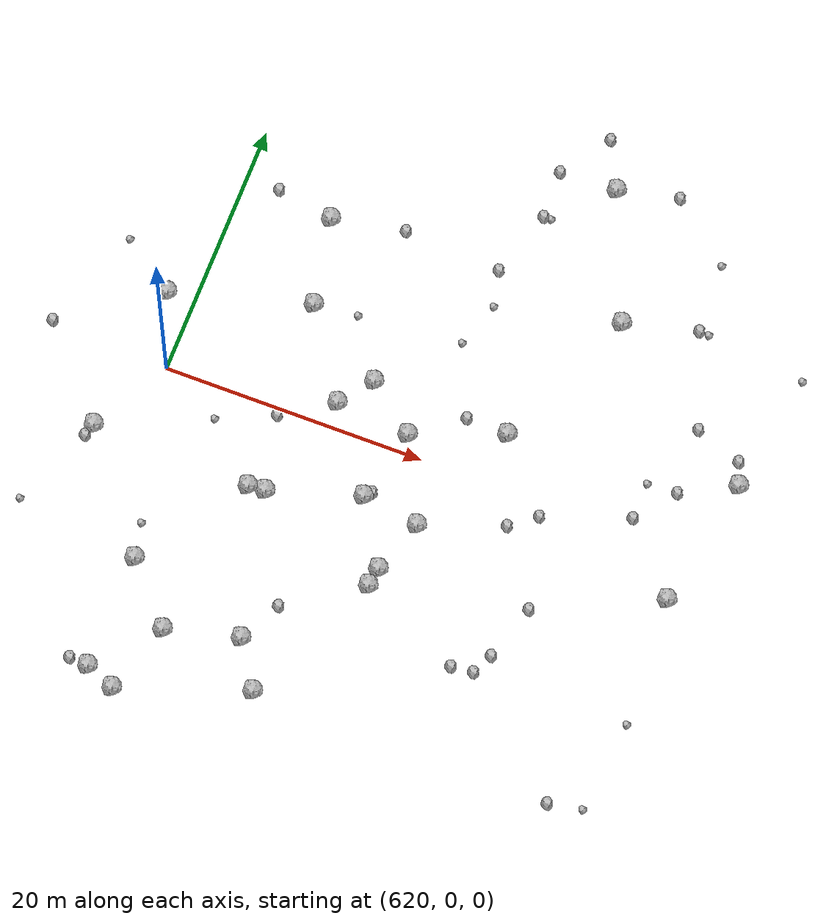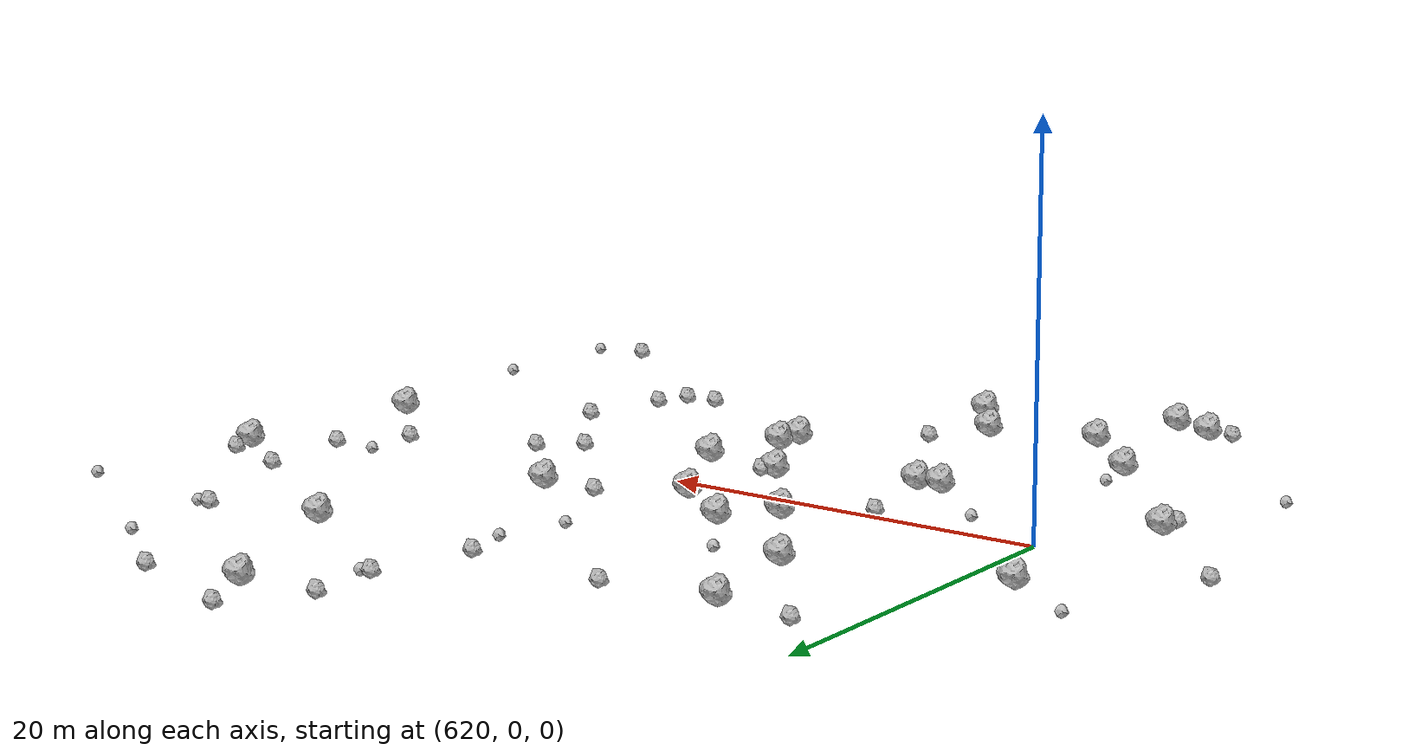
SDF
<sdf version="1.6">
 <world name="default">
  <include><uri>model://sun</uri></include>
  <model name="rock1_16_3">
   <include><uri>model://rock1</uri><pose>627.0260802669364 15.280998766811145 0.5 0 0 0</pose></include>
  </model>
  <model name="rock1_16_4">
   <include><uri>model://rock1</uri><pose>662.3733468984516 6.35729685346012 0.5 0 0 0</pose></include>
  </model>
  <model name="rock1_16_5">
   <include><uri>model://rock1</uri><pose>645.2186205615582 4.070316579465285 0.5 0 0 0</pose></include>
  </model>
  <model name="rock1_16_6">
   <include><uri>model://rock1</uri><pose>627.2645078390868 -18.86324153900548 0.5 0 0 0</pose></include>
  </model>
  <model name="rock1_16_7">
   <include><uri>model://rock1</uri><pose>625.4941531287235 -24.303367677286918 0.5 0 0 0</pose></include>
  </model>
  <model name="rock1_16_8">
   <include><uri>model://rock1</uri><pose>630.2947609237827 -6.337194175225054 0.5 0 0 0</pose></include>
  </model>
  <model name="rock1_16_9">
   <include><uri>model://rock1</uri><pose>623.2445659460645 -23.377354130462557 0.5 0 0 0</pose></include>
  </model>
  <model name="rock1_16_10">
   <include><uri>model://rock1</uri><pose>628.3127507885478 8.487707387196885 0.5 0 0 0</pose></include>
  </model>
  <model name="rock1_16_11">
   <include><uri>model://rock1</uri><pose>637.1439655581682 -4.15417233056165 0.5 0 0 0</pose></include>
  </model>
  <model name="rock1_16_12">
   <include><uri>model://rock1</uri><pose>639.943411581947 -10.434954726240143 0.5 0 0 0</pose></include>
  </model>
  <model name="rock1_16_13">
   <include><uri>model://rock1</uri><pose>628.988083920729 -6.447606170345548 0.5 0 0 0</pose></include>
  </model>
  <model name="rock1_16_14">
   <include><uri>model://rock1</uri><pose>635.0680969828536 -20.901773229123044 0.5 0 0 0</pose></include>
  </model>
  <model name="rock1_16_15">
   <include><uri>model://rock1</uri><pose>641.5611596472628 -4.858194111599165 0.5 0 0 0</pose></include>
  </model>
  <model name="rock1_16_16">
   <include><uri>model://rock1</uri><pose>640.1637841899112 -8.99173091509429 0.5 0 0 0</pose></include>
  </model>
  <model name="rock1_16_17">
   <include><uri>model://rock1</uri><pose>638.419811630801 1.4512036176316698 0.5 0 0 0</pose></include>
  </model>
  <model name="rock1_16_18">
   <include><uri>model://rock1</uri><pose>616.7204031695405 -6.060468842366163 0.5 0 0 0</pose></include>
  </model>
  <model name="rock1_16_19">
   <include><uri>model://rock1</uri><pose>617.8705922618323 5.54074994887074 0.5 0 0 0</pose></include>
  </model>
  <model name="rock1_16_20">
   <include><uri>model://rock1</uri><pose>623.3445728999529 -14.545218617549367 0.5 0 0 0</pose></include>
  </model>
  <model name="rock1_16_21">
   <include><uri>model://rock1</uri><pose>634.6489202512864 4.44158902262555 0.5 0 0 0</pose></include>
  </model>
  <model name="rock1_16_22">
   <include><uri>model://rock1</uri><pose>650.0036801727806 15.217081147983471 0.5 0 0 0</pose></include>
  </model>
  <model name="rock1_16_23">
   <include><uri>model://rock1</uri><pose>645.9758912926159 24.99025056564846 0.5 0 0 0</pose></include>
  </model>
  <model name="rock1_16_24">
   <include><uri>model://rock1</uri><pose>660.5175484372983 -3.6983985780376862 0.5 0 0 0</pose></include>
  </model>
  <model name="rock1_16_25">
   <include><uri>model://rock1</uri><pose>632.736325920314 1.9283905982598455 0.5 0 0 0</pose></include>
  </model>
  <model name="rock1_16_26">
   <include><uri>model://rock1</uri><pose>632.8033555472169 -17.459316099446312 0.5 0 0 0</pose></include>
  </model>
  <model name="rock2_16_0">
   <include><uri>model://rock2</uri><pose>644.1361963479804 28.62034655683788 0.3 0 0 0</pose></include>
  </model>
  <model name="rock2_16_1">
   <include><uri>model://rock2</uri><pose>655.5347511936309 16.68239905391321 0.3 0 0 0</pose></include>
  </model>
  <model name="rock2_16_2">
   <include><uri>model://rock2</uri><pose>657.7958248744345 -21.21593825334087 0.3 0 0 0</pose></include>
  </model>
  <model name="rock2_16_3">
   <include><uri>model://rock2</uri><pose>641.9899190883831 4.187424578738039 0.3 0 0 0</pose></include>
  </model>
  <model name="rock2_16_4">
   <include><uri>model://rock2</uri><pose>661.7200720919604 8.110629899357441 0.3 0 0 0</pose></include>
  </model>
  <model name="rock2_16_5">
   <include><uri>model://rock2</uri><pose>621.7678614389463 -23.268499008966263 0.3 0 0 0</pose></include>
  </model>
  <model name="rock2_16_6">
   <include><uri>model://rock2</uri><pose>649.6216140793891 -1.051460789360739 0.3 0 0 0</pose></include>
  </model>
  <model name="rock2_16_7">
   <include><uri>model://rock2</uri><pose>622.5925146220067 16.068769558431462 0.3 0 0 0</pose></include>
  </model>
  <model name="rock2_16_8">
   <include><uri>model://rock2</uri><pose>632.5467244900593 16.35084326389736 0.3 0 0 0</pose></include>
  </model>
  <model name="rock2_16_9">
   <include><uri>model://rock2</uri><pose>634.4504778239409 4.304809489522434 0.3 0 0 0</pose></include>
  </model>
  <model name="rock2_16_10">
   <include><uri>model://rock2</uri><pose>656.0149959158547 1.2702628502832383 0.3 0 0 0</pose></include>
  </model>
  <model name="rock2_16_11">
   <include><uri>model://rock2</uri><pose>650.5812234534942 26.05607035547842 0.3 0 0 0</pose></include>
  </model>
  <model name="rock2_16_12">
   <include><uri>model://rock2</uri><pose>640.0649165267338 15.89629129874718 0.3 0 0 0</pose></include>
  </model>
  <model name="rock2_16_13">
   <include><uri>model://rock2</uri><pose>647.6896225287741 -14.060069161050743 0.3 0 0 0</pose></include>
  </model>
  <model name="rock2_16_14">
   <include><uri>model://rock2</uri><pose>658.1217415454238 9.408435500080813 0.3 0 0 0</pose></include>
  </model>
  <model name="rock2_16_15">
   <include><uri>model://rock2</uri><pose>628.9532899322073 -0.5543762079966683 0.3 0 0 0</pose></include>
  </model>
  <model name="rock2_16_16">
   <include><uri>model://rock2</uri><pose>649.3717857387346 -13.890506749077215 0.3 0 0 0</pose></include>
  </model>
  <model name="rock2_16_17">
   <include><uri>model://rock2</uri><pose>634.4138705144054 -14.237621508441823 0.3 0 0 0</pose></include>
  </model>
  <model name="rock2_16_18">
   <include><uri>model://rock2</uri><pose>641.5340548189336 24.84351518581606 0.3 0 0 0</pose></include>
  </model>
  <model name="rock2_16_19">
   <include><uri>model://rock2</uri><pose>651.4211097887707 -8.001780372556311 0.3 0 0 0</pose></include>
  </model>
  <model name="rock2_16_20">
   <include><uri>model://rock2</uri><pose>647.6907533472046 -2.5751137364860774 0.3 0 0 0</pose></include>
  </model>
  <model name="rock2_16_21">
   <include><uri>model://rock2</uri><pose>641.6431769040629 21.076028101445843 0.3 0 0 0</pose></include>
  </model>
  <model name="rock2_16_22">
   <include><uri>model://rock2</uri><pose>637.5890789197963 -3.6774789785868265 0.3 0 0 0</pose></include>
  </model>
  <model name="rock2_16_23">
   <include><uri>model://rock2</uri><pose>658.3687585156492 4.239534597301585 0.3 0 0 0</pose></include>
  </model>
  <model name="rock2_16_24">
   <include><uri>model://rock2</uri><pose>616.4031224075668 -7.032723694980362 0.3 0 0 0</pose></include>
  </model>
  <model name="rock2_16_25">
   <include><uri>model://rock2</uri><pose>610.8046401359452 0.47133085569850763 0.3 0 0 0</pose></include>
  </model>
  <model name="rock2_16_26">
   <include><uri>model://rock2</uri><pose>650.1263259991442 -12.270466345439246 0.3 0 0 0</pose></include>
  </model>
  <model name="rock3_16_0">
   <include><uri>model://rock3</uri><pose>655.2872608514857 22.089103695728 0.2 0 0 0</pose></include>
  </model>
  <model name="rock3_16_1">
   <include><uri>model://rock3</uri><pose>661.055874092855 -13.670868173623617 0.2 0 0 0</pose></include>
  </model>
  <model name="rock3_16_2">
   <include><uri>model://rock3</uri><pose>660.322150142179 -20.756754769013114 0.2 0 0 0</pose></include>
  </model>
  <model name="rock3_16_3">
   <include><uri>model://rock3</uri><pose>640.7085220579871 13.053349464218847 0.2 0 0 0</pose></include>
  </model>
  <model name="rock3_16_4">
   <include><uri>model://rock3</uri><pose>624.7661214542734 -2.4890265465219983 0.2 0 0 0</pose></include>
  </model>
  <model name="rock3_16_5">
   <include><uri>model://rock3</uri><pose>613.7962694116352 -13.290163340142445 0.2 0 0 0</pose></include>
  </model>
  <model name="rock3_16_6">
   <include><uri>model://rock3</uri><pose>656.2702443632071 16.607180766472922 0.2 0 0 0</pose></include>
  </model>
  <model name="rock3_16_7">
   <include><uri>model://rock3</uri><pose>642.215230920719 21.06194225207777 0.2 0 0 0</pose></include>
  </model>
  <model name="rock3_16_8">
   <include><uri>model://rock3</uri><pose>622.761592106858 -11.885278159522088 0.2 0 0 0</pose></include>
  </model>
  <model name="rock3_16_9">
   <include><uri>model://rock3</uri><pose>663.9378062523152 15.636011247387167 0.2 0 0 0</pose></include>
  </model>
  <model name="rock3_16_10">
   <include><uri>model://rock3</uri><pose>613.7041934827555 8.432283701306886 0.2 0 0 0</pose></include>
  </model>
  <model name="rock3_16_11">
   <include><uri>model://rock3</uri><pose>656.0653281557211 4.115556654229017 0.2 0 0 0</pose></include>
  </model>
  <model name="rock3_16_12">
   <include><uri>model://rock3</uri><pose>631.6477177812374 8.80565920408921 0.2 0 0 0</pose></include>
  </model>
  <model name="rock3_16_13">
   <include><uri>model://rock3</uri><pose>639.5657412527639 9.537473944202738 0.2 0 0 0</pose></include>
  </model>
 </world>
</sdf>
